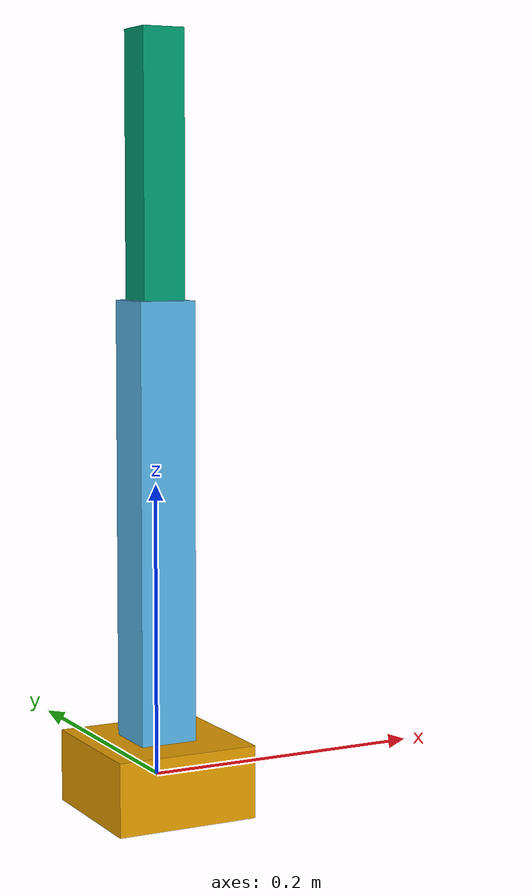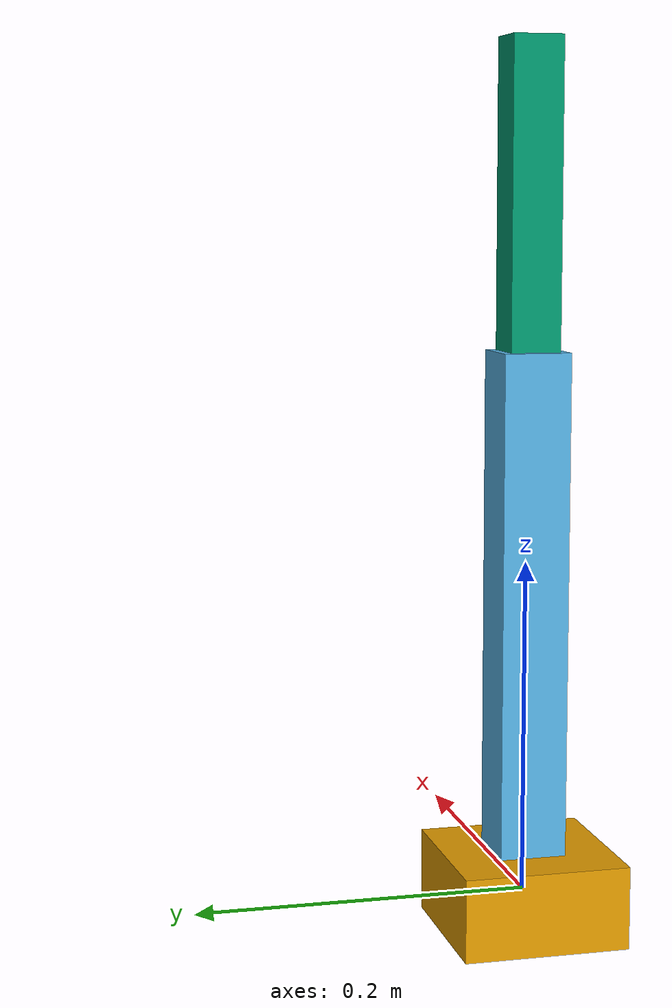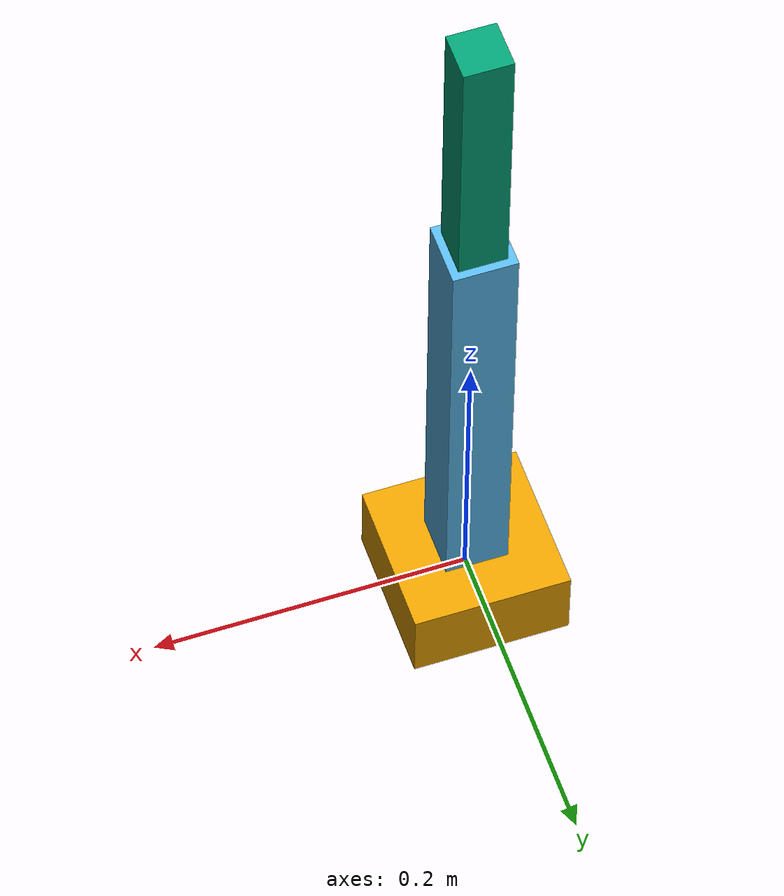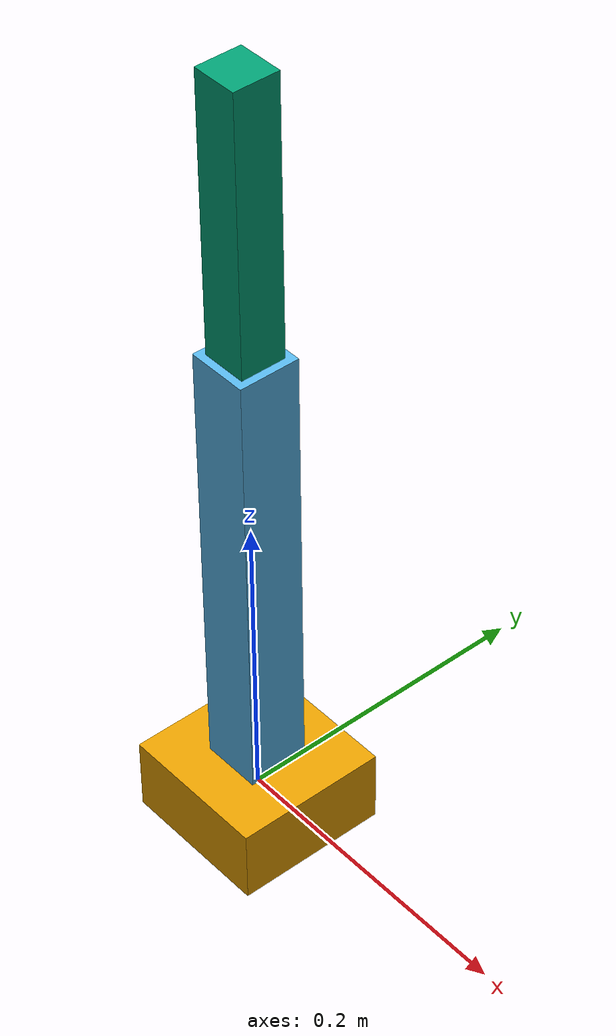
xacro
<?xml version="1.0"?>
<robot xmlns:xacro="http://www.ros.org/wiki/xacro" name="sample_arm">

  <xacro:arg name="link_length" default="0.3"/>
  <xacro:property name="L" value="$(arg link_length)"/>

  <link name="base_link">
    <inertial>
      <origin xyz="0 0 0"/>
      <mass value="1.0"/>
      <inertia ixx="0.01" iyy="0.01" izz="0.01" ixy="0" ixz="0" iyz="0"/>
    </inertial>
    <visual>
      <geometry><box size="0.1 0.1 0.05"/></geometry>
    </visual>
    <collision>
      <geometry><box size="0.1 0.1 0.05"/></geometry>
    </collision>
  </link>

  <joint name="shoulder_yaw" type="revolute">
    <parent link="base_link"/>
    <child link="upper_link"/>
    <axis xyz="0 0 1"/>
    <limit lower="-3.14" upper="3.14" effort="10" velocity="2.5"/>
    <origin xyz="0 0 0.025"/>
  </joint>

  <link name="upper_link">
    <inertial>
      <origin xyz="0 0 ${L / 2}"/>
      <mass value="0.5"/>
      <inertia ixx="0.005" iyy="0.005" izz="0.005" ixy="0" ixz="0" iyz="0"/>
    </inertial>
    <visual>
      <geometry><box size="0.04 0.04 ${L}"/></geometry>
      <origin xyz="0 0 ${L / 2}"/>
    </visual>
    <collision>
      <geometry><box size="0.04 0.04 ${L}"/></geometry>
      <origin xyz="0 0 ${L / 2}"/>
    </collision>
  </link>

  <joint name="elbow_pitch" type="revolute">
    <parent link="upper_link"/>
    <child link="forearm"/>
    <axis xyz="0 1 0"/>
    <limit lower="-1.57" upper="1.57" effort="10" velocity="2.5"/>
    <origin xyz="0 0 ${L}"/>
  </joint>

  <link name="forearm">
    <inertial>
      <origin xyz="0 0 ${L * 0.3}"/>
      <mass value="0.3"/>
      <inertia ixx="0.003" iyy="0.003" izz="0.003" ixy="0" ixz="0" iyz="0"/>
    </inertial>
    <visual>
      <geometry><box size="0.03 0.03 ${L * 0.6}"/></geometry>
      <origin xyz="0 0 ${L * 0.3}"/>
    </visual>
    <collision>
      <geometry><box size="0.03 0.03 ${L * 0.6}"/></geometry>
      <origin xyz="0 0 ${L * 0.3}"/>
    </collision>
  </link>

</robot>
